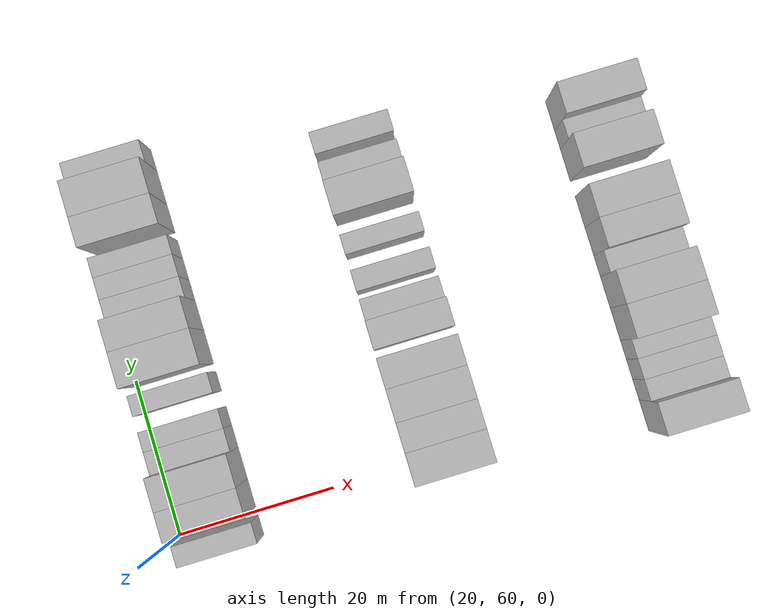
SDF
<sdf version="1.6">
 <world name="default">
  <model name="building_123">
   <static>1</static>
   <pose>25.0000 58.2323 0 0.000000 0.000000 0.000000</pose>
   <link name="link">
    <pose>0 0 3.00 0 0 0</pose>
    <collision name="collision"><geometry><box><size>10.0000 2.6063 6.0000</size></box></geometry></collision>
    <visual name="visual">
     <cast_shadows>0</cast_shadows>
     <geometry><box><size>10.0000 2.6063 6.0000</size></box></geometry>
     <material>
      <script>
       <uri>model://HANNAS_wall/materials/scripts</uri>
       <uri>model://HANNAS_wall/materials/textures</uri>
       <name>vrc/HANNAS_wall</name>
      </script>
     </material>
    </visual>
   </link>
  </model>
  <model name="building_124">
   <static>1</static>
   <pose>25.0000 62.3802 0 0.000000 0.000000 0.000000</pose>
   <link name="link">
    <pose>0 0 4.50 0 0 0</pose>
    <collision name="collision"><geometry><box><size>10.0000 3.6896 9.0000</size></box></geometry></collision>
    <visual name="visual">
     <cast_shadows>0</cast_shadows>
     <geometry><box><size>10.0000 3.6896 9.0000</size></box></geometry>
     <material>
      <script>
       <uri>model://HANNAS_wall/materials/scripts</uri>
       <uri>model://HANNAS_wall/materials/textures</uri>
       <name>vrc/HANNAS_wall</name>
      </script>
     </material>
    </visual>
   </link>
  </model>
  <model name="building_125">
   <static>1</static>
   <pose>25.0000 66.2812 0 0.000000 0.000000 0.000000</pose>
   <link name="link">
    <pose>0 0 4.50 0 0 0</pose>
    <collision name="collision"><geometry><box><size>10.0000 4.1123 9.0000</size></box></geometry></collision>
    <visual name="visual">
     <cast_shadows>0</cast_shadows>
     <geometry><box><size>10.0000 4.1123 9.0000</size></box></geometry>
     <material>
      <script>
       <uri>model://HANNAS_wall/materials/scripts</uri>
       <uri>model://HANNAS_wall/materials/textures</uri>
       <name>vrc/HANNAS_wall</name>
      </script>
     </material>
    </visual>
   </link>
  </model>
  <model name="building_126">
   <static>1</static>
   <pose>25.0000 69.7861 0 0.000000 0.000000 0.000000</pose>
   <link name="link">
    <pose>0 0 3.00 0 0 0</pose>
    <collision name="collision"><geometry><box><size>10.0000 2.8975 6.0000</size></box></geometry></collision>
    <visual name="visual">
     <cast_shadows>0</cast_shadows>
     <geometry><box><size>10.0000 2.8975 6.0000</size></box></geometry>
     <material>
      <script>
       <uri>model://HANNAS_wall/materials/scripts</uri>
       <uri>model://HANNAS_wall/materials/textures</uri>
       <name>vrc/HANNAS_wall</name>
      </script>
     </material>
    </visual>
   </link>
  </model>
  <model name="building_127">
   <static>1</static>
   <pose>25.0000 72.4576 0 0.000000 0.000000 0.000000</pose>
   <link name="link">
    <pose>0 0 3.00 0 0 0</pose>
    <collision name="collision"><geometry><box><size>10.0000 2.4455 6.0000</size></box></geometry></collision>
    <visual name="visual">
     <cast_shadows>0</cast_shadows>
     <geometry><box><size>10.0000 2.4455 6.0000</size></box></geometry>
     <material>
      <script>
       <uri>model://HANNAS_wall/materials/scripts</uri>
       <uri>model://HANNAS_wall/materials/textures</uri>
       <name>vrc/HANNAS_wall</name>
      </script>
     </material>
    </visual>
   </link>
  </model>
  <model name="building_128">
   <static>1</static>
   <pose>25.0000 76.9574 0 0.000000 0.000000 0.000000</pose>
   <link name="link">
    <pose>0 0 3.00 0 0 0</pose>
    <collision name="collision"><geometry><box><size>10.0000 2.5541 6.0000</size></box></geometry></collision>
    <visual name="visual">
     <cast_shadows>0</cast_shadows>
     <geometry><box><size>10.0000 2.5541 6.0000</size></box></geometry>
     <material>
      <script>
       <uri>model://HANNAS_wall/materials/scripts</uri>
       <uri>model://HANNAS_wall/materials/textures</uri>
       <name>vrc/HANNAS_wall</name>
      </script>
     </material>
    </visual>
   </link>
  </model>
  <model name="building_129">
   <static>1</static>
   <pose>25.0000 81.4765 0 0.000000 0.000000 0.000000</pose>
   <link name="link">
    <pose>0 0 4.50 0 0 0</pose>
    <collision name="collision"><geometry><box><size>10.0000 4.4843 9.0000</size></box></geometry></collision>
    <visual name="visual">
     <cast_shadows>0</cast_shadows>
     <geometry><box><size>10.0000 4.4843 9.0000</size></box></geometry>
     <material>
      <script>
       <uri>model://HANNAS_wall/materials/scripts</uri>
       <uri>model://HANNAS_wall/materials/textures</uri>
       <name>vrc/HANNAS_wall</name>
      </script>
     </material>
    </visual>
   </link>
  </model>
  <model name="building_130">
   <static>1</static>
   <pose>25.0000 85.6780 0 0.000000 0.000000 0.000000</pose>
   <link name="link">
    <pose>0 0 4.50 0 0 0</pose>
    <collision name="collision"><geometry><box><size>10.0000 3.9187 9.0000</size></box></geometry></collision>
    <visual name="visual">
     <cast_shadows>0</cast_shadows>
     <geometry><box><size>10.0000 3.9187 9.0000</size></box></geometry>
     <material>
      <script>
       <uri>model://HANNAS_wall/materials/scripts</uri>
       <uri>model://HANNAS_wall/materials/textures</uri>
       <name>vrc/HANNAS_wall</name>
      </script>
     </material>
    </visual>
   </link>
  </model>
  <model name="building_131">
   <static>1</static>
   <pose>25.0000 88.9790 0 0.000000 0.000000 0.000000</pose>
   <link name="link">
    <pose>0 0 3.00 0 0 0</pose>
    <collision name="collision"><geometry><box><size>10.0000 2.6831 6.0000</size></box></geometry></collision>
    <visual name="visual">
     <cast_shadows>0</cast_shadows>
     <geometry><box><size>10.0000 2.6831 6.0000</size></box></geometry>
     <material>
      <script>
       <uri>model://HANNAS_wall/materials/scripts</uri>
       <uri>model://HANNAS_wall/materials/textures</uri>
       <name>vrc/HANNAS_wall</name>
      </script>
     </material>
    </visual>
   </link>
  </model>
  <model name="building_132">
   <static>1</static>
   <pose>25.0000 91.7224 0 0.000000 0.000000 0.000000</pose>
   <link name="link">
    <pose>0 0 3.00 0 0 0</pose>
    <collision name="collision"><geometry><box><size>10.0000 2.8037 6.0000</size></box></geometry></collision>
    <visual name="visual">
     <cast_shadows>0</cast_shadows>
     <geometry><box><size>10.0000 2.8037 6.0000</size></box></geometry>
     <material>
      <script>
       <uri>model://HANNAS_wall/materials/scripts</uri>
       <uri>model://HANNAS_wall/materials/textures</uri>
       <name>vrc/HANNAS_wall</name>
      </script>
     </material>
    </visual>
   </link>
  </model>
  <model name="building_133">
   <static>1</static>
   <pose>25.0000 94.3591 0 0.000000 0.000000 0.000000</pose>
   <link name="link">
    <pose>0 0 3.00 0 0 0</pose>
    <collision name="collision"><geometry><box><size>10.0000 2.4698 6.0000</size></box></geometry></collision>
    <visual name="visual">
     <cast_shadows>0</cast_shadows>
     <geometry><box><size>10.0000 2.4698 6.0000</size></box></geometry>
     <material>
      <script>
       <uri>model://HANNAS_wall/materials/scripts</uri>
       <uri>model://HANNAS_wall/materials/textures</uri>
       <name>vrc/HANNAS_wall</name>
      </script>
     </material>
    </visual>
   </link>
  </model>
  <model name="building_134">
   <static>1</static>
   <pose>25.0000 98.4799 0 0.000000 0.000000 0.000000</pose>
   <link name="link">
    <pose>0 0 4.50 0 0 0</pose>
    <collision name="collision"><geometry><box><size>10.0000 3.7719 9.0000</size></box></geometry></collision>
    <visual name="visual">
     <cast_shadows>0</cast_shadows>
     <geometry><box><size>10.0000 3.7719 9.0000</size></box></geometry>
     <material>
      <script>
       <uri>model://HANNAS_wall/materials/scripts</uri>
       <uri>model://HANNAS_wall/materials/textures</uri>
       <name>vrc/HANNAS_wall</name>
      </script>
     </material>
    </visual>
   </link>
  </model>
  <model name="building_135">
   <static>1</static>
   <pose>25.0000 102.6154 0 0.000000 0.000000 0.000000</pose>
   <link name="link">
    <pose>0 0 4.50 0 0 0</pose>
    <collision name="collision"><geometry><box><size>10.0000 4.4991 9.0000</size></box></geometry></collision>
    <visual name="visual">
     <cast_shadows>0</cast_shadows>
     <geometry><box><size>10.0000 4.4991 9.0000</size></box></geometry>
     <material>
      <script>
       <uri>model://HANNAS_wall/materials/scripts</uri>
       <uri>model://HANNAS_wall/materials/textures</uri>
       <name>vrc/HANNAS_wall</name>
      </script>
     </material>
    </visual>
   </link>
  </model>
  <model name="building_136">
   <static>1</static>
   <pose>25.0000 106.2873 0 0.000000 0.000000 0.000000</pose>
   <link name="link">
    <pose>0 0 3.00 0 0 0</pose>
    <collision name="collision"><geometry><box><size>10.0000 2.8447 6.0000</size></box></geometry></collision>
    <visual name="visual">
     <cast_shadows>0</cast_shadows>
     <geometry><box><size>10.0000 2.8447 6.0000</size></box></geometry>
     <material>
      <script>
       <uri>model://HANNAS_wall/materials/scripts</uri>
       <uri>model://HANNAS_wall/materials/textures</uri>
       <name>vrc/HANNAS_wall</name>
      </script>
     </material>
    </visual>
   </link>
  </model>
  <model name="building_341">
   <static>1</static>
   <pose>55.0000 60.2490 0 0.000000 0.000000 0.000000</pose>
   <link name="link">
    <pose>0 0 4.50 0 0 0</pose>
    <collision name="collision"><geometry><box><size>10.0000 4.0941 9.0000</size></box></geometry></collision>
    <visual name="visual">
     <cast_shadows>0</cast_shadows>
     <geometry><box><size>10.0000 4.0941 9.0000</size></box></geometry>
     <material>
      <script>
       <uri>model://HANNAS_wall/materials/scripts</uri>
       <uri>model://HANNAS_wall/materials/textures</uri>
       <name>vrc/HANNAS_wall</name>
      </script>
     </material>
    </visual>
   </link>
  </model>
  <model name="building_342">
   <static>1</static>
   <pose>55.0000 64.1338 0 0.000000 0.000000 0.000000</pose>
   <link name="link">
    <pose>0 0 4.50 0 0 0</pose>
    <collision name="collision"><geometry><box><size>10.0000 3.6755 9.0000</size></box></geometry></collision>
    <visual name="visual">
     <cast_shadows>0</cast_shadows>
     <geometry><box><size>10.0000 3.6755 9.0000</size></box></geometry>
     <material>
      <script>
       <uri>model://HANNAS_wall/materials/scripts</uri>
       <uri>model://HANNAS_wall/materials/textures</uri>
       <name>vrc/HANNAS_wall</name>
      </script>
     </material>
    </visual>
   </link>
  </model>
  <model name="building_343">
   <static>1</static>
   <pose>55.0000 68.0259 0 0.000000 0.000000 0.000000</pose>
   <link name="link">
    <pose>0 0 4.50 0 0 0</pose>
    <collision name="collision"><geometry><box><size>10.0000 4.1087 9.0000</size></box></geometry></collision>
    <visual name="visual">
     <cast_shadows>0</cast_shadows>
     <geometry><box><size>10.0000 4.1087 9.0000</size></box></geometry>
     <material>
      <script>
       <uri>model://HANNAS_wall/materials/scripts</uri>
       <uri>model://HANNAS_wall/materials/textures</uri>
       <name>vrc/HANNAS_wall</name>
      </script>
     </material>
    </visual>
   </link>
  </model>
  <model name="building_344">
   <static>1</static>
   <pose>55.0000 71.9826 0 0.000000 0.000000 0.000000</pose>
   <link name="link">
    <pose>0 0 4.50 0 0 0</pose>
    <collision name="collision"><geometry><box><size>10.0000 3.8048 9.0000</size></box></geometry></collision>
    <visual name="visual">
     <cast_shadows>0</cast_shadows>
     <geometry><box><size>10.0000 3.8048 9.0000</size></box></geometry>
     <material>
      <script>
       <uri>model://HANNAS_wall/materials/scripts</uri>
       <uri>model://HANNAS_wall/materials/textures</uri>
       <name>vrc/HANNAS_wall</name>
      </script>
     </material>
    </visual>
   </link>
  </model>
  <model name="building_345">
   <static>1</static>
   <pose>55.0000 76.6872 0 0.000000 0.000000 0.000000</pose>
   <link name="link">
    <pose>0 0 4.50 0 0 0</pose>
    <collision name="collision"><geometry><box><size>10.0000 3.6044 9.0000</size></box></geometry></collision>
    <visual name="visual">
     <cast_shadows>0</cast_shadows>
     <geometry><box><size>10.0000 3.6044 9.0000</size></box></geometry>
     <material>
      <script>
       <uri>model://HANNAS_wall/materials/scripts</uri>
       <uri>model://HANNAS_wall/materials/textures</uri>
       <name>vrc/HANNAS_wall</name>
      </script>
     </material>
    </visual>
   </link>
  </model>
  <model name="building_346">
   <static>1</static>
   <pose>55.0000 79.8814 0 0.000000 0.000000 0.000000</pose>
   <link name="link">
    <pose>0 0 3.00 0 0 0</pose>
    <collision name="collision"><geometry><box><size>10.0000 2.7841 6.0000</size></box></geometry></collision>
    <visual name="visual">
     <cast_shadows>0</cast_shadows>
     <geometry><box><size>10.0000 2.7841 6.0000</size></box></geometry>
     <material>
      <script>
       <uri>model://HANNAS_wall/materials/scripts</uri>
       <uri>model://HANNAS_wall/materials/textures</uri>
       <name>vrc/HANNAS_wall</name>
      </script>
     </material>
    </visual>
   </link>
  </model>
  <model name="building_347">
   <static>1</static>
   <pose>55.0000 83.6153 0 0.000000 0.000000 0.000000</pose>
   <link name="link">
    <pose>0 0 3.00 0 0 0</pose>
    <collision name="collision"><geometry><box><size>10.0000 2.6836 6.0000</size></box></geometry></collision>
    <visual name="visual">
     <cast_shadows>0</cast_shadows>
     <geometry><box><size>10.0000 2.6836 6.0000</size></box></geometry>
     <material>
      <script>
       <uri>model://HANNAS_wall/materials/scripts</uri>
       <uri>model://HANNAS_wall/materials/textures</uri>
       <name>vrc/HANNAS_wall</name>
      </script>
     </material>
    </visual>
   </link>
  </model>
  <model name="building_348">
   <static>1</static>
   <pose>55.0000 88.2122 0 0.000000 0.000000 0.000000</pose>
   <link name="link">
    <pose>0 0 3.00 0 0 0</pose>
    <collision name="collision"><geometry><box><size>10.0000 2.5104 6.0000</size></box></geometry></collision>
    <visual name="visual">
     <cast_shadows>0</cast_shadows>
     <geometry><box><size>10.0000 2.5104 6.0000</size></box></geometry>
     <material>
      <script>
       <uri>model://HANNAS_wall/materials/scripts</uri>
       <uri>model://HANNAS_wall/materials/textures</uri>
       <name>vrc/HANNAS_wall</name>
      </script>
     </material>
    </visual>
   </link>
  </model>
  <model name="building_349">
   <static>1</static>
   <pose>55.0000 93.6569 0 0.000000 0.000000 0.000000</pose>
   <link name="link">
    <pose>0 0 4.50 0 0 0</pose>
    <collision name="collision"><geometry><box><size>10.0000 4.3790 9.0000</size></box></geometry></collision>
    <visual name="visual">
     <cast_shadows>0</cast_shadows>
     <geometry><box><size>10.0000 4.3790 9.0000</size></box></geometry>
     <material>
      <script>
       <uri>model://HANNAS_wall/materials/scripts</uri>
       <uri>model://HANNAS_wall/materials/textures</uri>
       <name>vrc/HANNAS_wall</name>
      </script>
     </material>
    </visual>
   </link>
  </model>
  <model name="building_350">
   <static>1</static>
   <pose>55.0000 97.2935 0 0.000000 0.000000 0.000000</pose>
   <link name="link">
    <pose>0 0 3.00 0 0 0</pose>
    <collision name="collision"><geometry><box><size>10.0000 2.8943 6.0000</size></box></geometry></collision>
    <visual name="visual">
     <cast_shadows>0</cast_shadows>
     <geometry><box><size>10.0000 2.8943 6.0000</size></box></geometry>
     <material>
      <script>
       <uri>model://HANNAS_wall/materials/scripts</uri>
       <uri>model://HANNAS_wall/materials/textures</uri>
       <name>vrc/HANNAS_wall</name>
      </script>
     </material>
    </visual>
   </link>
  </model>
  <model name="building_351">
   <static>1</static>
   <pose>55.0000 101.1327 0 0.000000 0.000000 0.000000</pose>
   <link name="link">
    <pose>0 0 3.00 0 0 0</pose>
    <collision name="collision"><geometry><box><size>10.0000 2.7839 6.0000</size></box></geometry></collision>
    <visual name="visual">
     <cast_shadows>0</cast_shadows>
     <geometry><box><size>10.0000 2.7839 6.0000</size></box></geometry>
     <material>
      <script>
       <uri>model://HANNAS_wall/materials/scripts</uri>
       <uri>model://HANNAS_wall/materials/textures</uri>
       <name>vrc/HANNAS_wall</name>
      </script>
     </material>
    </visual>
   </link>
  </model>
  <model name="building_570">
   <static>1</static>
   <pose>85.0000 57.3309 0 0.000000 0.000000 0.000000</pose>
   <link name="link">
    <pose>0 0 4.50 0 0 0</pose>
    <collision name="collision"><geometry><box><size>10.0000 4.1032 9.0000</size></box></geometry></collision>
    <visual name="visual">
     <cast_shadows>0</cast_shadows>
     <geometry><box><size>10.0000 4.1032 9.0000</size></box></geometry>
     <material>
      <script>
       <uri>model://HANNAS_wall/materials/scripts</uri>
       <uri>model://HANNAS_wall/materials/textures</uri>
       <name>vrc/HANNAS_wall</name>
      </script>
     </material>
    </visual>
   </link>
  </model>
  <model name="building_571">
   <static>1</static>
   <pose>85.0000 60.7412 0 0.000000 0.000000 0.000000</pose>
   <link name="link">
    <pose>0 0 3.00 0 0 0</pose>
    <collision name="collision"><geometry><box><size>10.0000 2.7173 6.0000</size></box></geometry></collision>
    <visual name="visual">
     <cast_shadows>0</cast_shadows>
     <geometry><box><size>10.0000 2.7173 6.0000</size></box></geometry>
     <material>
      <script>
       <uri>model://HANNAS_wall/materials/scripts</uri>
       <uri>model://HANNAS_wall/materials/textures</uri>
       <name>vrc/HANNAS_wall</name>
      </script>
     </material>
    </visual>
   </link>
  </model>
  <model name="building_572">
   <static>1</static>
   <pose>85.0000 63.4092 0 0.000000 0.000000 0.000000</pose>
   <link name="link">
    <pose>0 0 3.00 0 0 0</pose>
    <collision name="collision"><geometry><box><size>10.0000 2.6188 6.0000</size></box></geometry></collision>
    <visual name="visual">
     <cast_shadows>0</cast_shadows>
     <geometry><box><size>10.0000 2.6188 6.0000</size></box></geometry>
     <material>
      <script>
       <uri>model://HANNAS_wall/materials/scripts</uri>
       <uri>model://HANNAS_wall/materials/textures</uri>
       <name>vrc/HANNAS_wall</name>
      </script>
     </material>
    </visual>
   </link>
  </model>
  <model name="building_573">
   <static>1</static>
   <pose>85.0000 65.9564 0 0.000000 0.000000 0.000000</pose>
   <link name="link">
    <pose>0 0 3.00 0 0 0</pose>
    <collision name="collision"><geometry><box><size>10.0000 2.4756 6.0000</size></box></geometry></collision>
    <visual name="visual">
     <cast_shadows>0</cast_shadows>
     <geometry><box><size>10.0000 2.4756 6.0000</size></box></geometry>
     <material>
      <script>
       <uri>model://HANNAS_wall/materials/scripts</uri>
       <uri>model://HANNAS_wall/materials/textures</uri>
       <name>vrc/HANNAS_wall</name>
      </script>
     </material>
    </visual>
   </link>
  </model>
  <model name="building_574">
   <static>1</static>
   <pose>85.0000 69.3188 0 0.000000 0.000000 0.000000</pose>
   <link name="link">
    <pose>0 0 4.50 0 0 0</pose>
    <collision name="collision"><geometry><box><size>10.0000 4.2492 9.0000</size></box></geometry></collision>
    <visual name="visual">
     <cast_shadows>0</cast_shadows>
     <geometry><box><size>10.0000 4.2492 9.0000</size></box></geometry>
     <material>
      <script>
       <uri>model://HANNAS_wall/materials/scripts</uri>
       <uri>model://HANNAS_wall/materials/textures</uri>
       <name>vrc/HANNAS_wall</name>
      </script>
     </material>
    </visual>
   </link>
  </model>
  <model name="building_575">
   <static>1</static>
   <pose>85.0000 73.5244 0 0.000000 0.000000 0.000000</pose>
   <link name="link">
    <pose>0 0 4.50 0 0 0</pose>
    <collision name="collision"><geometry><box><size>10.0000 4.1621 9.0000</size></box></geometry></collision>
    <visual name="visual">
     <cast_shadows>0</cast_shadows>
     <geometry><box><size>10.0000 4.1621 9.0000</size></box></geometry>
     <material>
      <script>
       <uri>model://HANNAS_wall/materials/scripts</uri>
       <uri>model://HANNAS_wall/materials/textures</uri>
       <name>vrc/HANNAS_wall</name>
      </script>
     </material>
    </visual>
   </link>
  </model>
  <model name="building_576">
   <static>1</static>
   <pose>85.0000 77.0038 0 0.000000 0.000000 0.000000</pose>
   <link name="link">
    <pose>0 0 3.00 0 0 0</pose>
    <collision name="collision"><geometry><box><size>10.0000 2.7966 6.0000</size></box></geometry></collision>
    <visual name="visual">
     <cast_shadows>0</cast_shadows>
     <geometry><box><size>10.0000 2.7966 6.0000</size></box></geometry>
     <material>
      <script>
       <uri>model://HANNAS_wall/materials/scripts</uri>
       <uri>model://HANNAS_wall/materials/textures</uri>
       <name>vrc/HANNAS_wall</name>
      </script>
     </material>
    </visual>
   </link>
  </model>
  <model name="building_577">
   <static>1</static>
   <pose>85.0000 80.2708 0 0.000000 0.000000 0.000000</pose>
   <link name="link">
    <pose>0 0 4.50 0 0 0</pose>
    <collision name="collision"><geometry><box><size>10.0000 3.7375 9.0000</size></box></geometry></collision>
    <visual name="visual">
     <cast_shadows>0</cast_shadows>
     <geometry><box><size>10.0000 3.7375 9.0000</size></box></geometry>
     <material>
      <script>
       <uri>model://HANNAS_wall/materials/scripts</uri>
       <uri>model://HANNAS_wall/materials/textures</uri>
       <name>vrc/HANNAS_wall</name>
      </script>
     </material>
    </visual>
   </link>
  </model>
  <model name="building_578">
   <static>1</static>
   <pose>85.0000 84.2211 0 0.000000 0.000000 0.000000</pose>
   <link name="link">
    <pose>0 0 4.50 0 0 0</pose>
    <collision name="collision"><geometry><box><size>10.0000 4.1630 9.0000</size></box></geometry></collision>
    <visual name="visual">
     <cast_shadows>0</cast_shadows>
     <geometry><box><size>10.0000 4.1630 9.0000</size></box></geometry>
     <material>
      <script>
       <uri>model://HANNAS_wall/materials/scripts</uri>
       <uri>model://HANNAS_wall/materials/textures</uri>
       <name>vrc/HANNAS_wall</name>
      </script>
     </material>
    </visual>
   </link>
  </model>
  <model name="building_579">
   <static>1</static>
   <pose>85.0000 90.4629 0 0.000000 0.000000 0.000000</pose>
   <link name="link">
    <pose>0 0 4.50 0 0 0</pose>
    <collision name="collision"><geometry><box><size>10.0000 4.3208 9.0000</size></box></geometry></collision>
    <visual name="visual">
     <cast_shadows>0</cast_shadows>
     <geometry><box><size>10.0000 4.3208 9.0000</size></box></geometry>
     <material>
      <script>
       <uri>model://HANNAS_wall/materials/scripts</uri>
       <uri>model://HANNAS_wall/materials/textures</uri>
       <name>vrc/HANNAS_wall</name>
      </script>
     </material>
    </visual>
   </link>
  </model>
  <model name="building_580">
   <static>1</static>
   <pose>85.0000 93.8431 0 0.000000 0.000000 0.000000</pose>
   <link name="link">
    <pose>0 0 3.00 0 0 0</pose>
    <collision name="collision"><geometry><box><size>10.0000 2.4394 6.0000</size></box></geometry></collision>
    <visual name="visual">
     <cast_shadows>0</cast_shadows>
     <geometry><box><size>10.0000 2.4394 6.0000</size></box></geometry>
     <material>
      <script>
       <uri>model://HANNAS_wall/materials/scripts</uri>
       <uri>model://HANNAS_wall/materials/textures</uri>
       <name>vrc/HANNAS_wall</name>
      </script>
     </material>
    </visual>
   </link>
  </model>
  <model name="building_581">
   <static>1</static>
   <pose>85.0000 97.0414 0 0.000000 0.000000 0.000000</pose>
   <link name="link">
    <pose>0 0 4.50 0 0 0</pose>
    <collision name="collision"><geometry><box><size>10.0000 3.9572 9.0000</size></box></geometry></collision>
    <visual name="visual">
     <cast_shadows>0</cast_shadows>
     <geometry><box><size>10.0000 3.9572 9.0000</size></box></geometry>
     <material>
      <script>
       <uri>model://HANNAS_wall/materials/scripts</uri>
       <uri>model://HANNAS_wall/materials/textures</uri>
       <name>vrc/HANNAS_wall</name>
      </script>
     </material>
    </visual>
   </link>
  </model>
 </world>
</sdf>
